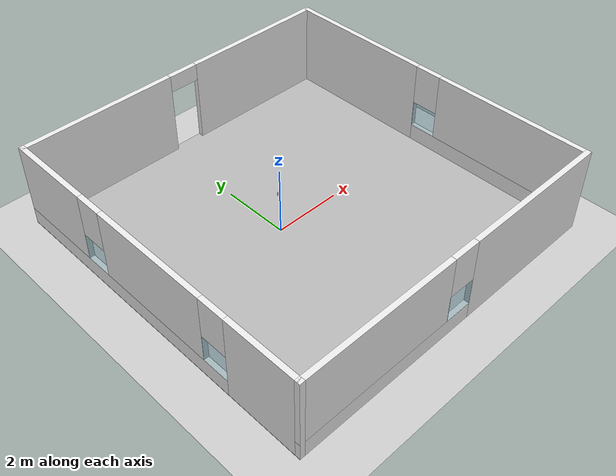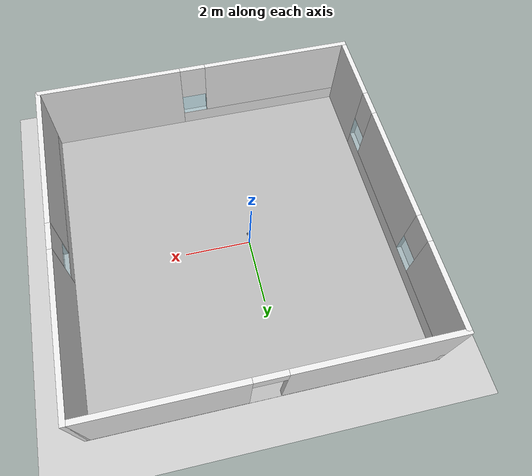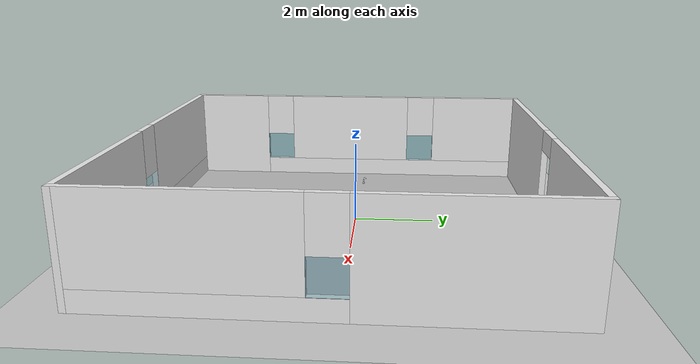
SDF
<sdf version="1.6">
 <world name="default">
  <light name="sun" type="directional">
   <pose>0 0 10 0 -0 0</pose>
   <diffuse>0.8 0.8 0.8 1</diffuse>
   <specular>0.2 0.2 0.2 1</specular>
   <attenuation>
    <range>1000</range>
    <constant>0.9</constant>
    <linear>0.01</linear>
    <quadratic>0.001</quadratic>
   </attenuation>
   <direction>-0.5 0.1 -0.9</direction>
  </light>
  <model name="ground_plane">
   <static>1</static>
   <link name="link">
    <collision name="collision">
     <geometry><plane><normal>0 0 1</normal><size>100 100</size></plane></geometry>
     <surface>
      <contact><collide_bitmask>65535</collide_bitmask></contact>
      <friction><ode><mu>100</mu><mu2>50</mu2></ode></friction>
     </surface>
    </collision>
    <visual name="visual">
     <cast_shadows>0</cast_shadows>
     <geometry><plane><normal>0 0 1</normal><size>100 100</size></plane></geometry>
     <material>
      <script><uri>file://media/materials/scripts/gazebo.material</uri><name>Gazebo/Grey</name></script>
     </material>
    </visual>
   </link>
  </model>
  <gravity>0 0 -9.8</gravity>
  <magnetic_field>6e-06 2.3e-05 -4.2e-05</magnetic_field>
  <atmosphere type="adiabatic"/>
  <physics name="default_physics" default="0" type="ode">
   <max_step_size>0.001</max_step_size>
   <real_time_factor>1</real_time_factor>
   <real_time_update_rate>1000</real_time_update_rate>
  </physics>
  <scene><ambient>0.4 0.4 0.4 1</ambient><background>0.7 0.7 0.7 1</background><shadows>1</shadows></scene>
  <audio><device>default</device></audio>
  <spherical_coordinates>
   <surface_model>EARTH_WGS84</surface_model>
   <latitude_deg>0</latitude_deg>
   <longitude_deg>0</longitude_deg>
   <elevation>0</elevation>
   <heading_deg>0</heading_deg>
  </spherical_coordinates>
  <model name="office_small">
   <model name="office_small">
    <pose>0.626081 -0.27837 0 0 -0 0</pose>
    <link name="Wall_2">
     <pose>0 4.925 0 0 -0 0</pose>
     <visual name="Wall_2_Visual_0">
      <pose>-2.69024 0 1.25 0 -0 0</pose>
      <geometry><box><size>4.61951 0.15 2.5</size></box></geometry>
      <material>
       <script>
        <uri>model://office_small/materials/scripts</uri>
        <uri>model://office_small/materials/textures</uri>
        <name>wall_white</name>
       </script>
      </material>
     </visual>
     <collision name="Wall_2_Collision_0">
      <geometry><box><size>4.61951 0.15 2.5</size></box></geometry>
      <pose>-2.69024 0 1.25 0 -0 0</pose>
     </collision>
     <visual name="Wall_2_Visual_1">
      <pose>2.75976 0 1.25 0 -0 0</pose>
      <geometry><box><size>4.48049 0.15 2.5</size></box></geometry>
      <material>
       <script>
        <uri>model://office_small/materials/scripts</uri>
        <uri>model://office_small/materials/textures</uri>
        <name>wall_white</name>
       </script>
      </material>
     </visual>
     <collision name="Wall_2_Collision_1">
      <geometry><box><size>4.48049 0.15 2.5</size></box></geometry>
      <pose>2.75976 0 1.25 0 -0 0</pose>
     </collision>
     <visual name="Wall_2_Visual_2">
      <pose>0.06951 0 2.25 0 -0 0</pose>
      <geometry><box><size>0.9 0.15 0.5</size></box></geometry>
      <material>
       <script>
        <uri>model://office_small/materials/scripts</uri>
        <uri>model://office_small/materials/textures</uri>
        <name>wall_white</name>
       </script>
      </material>
     </visual>
     <collision name="Wall_2_Collision_2">
      <geometry><box><size>0.9 0.15 0.5</size></box></geometry>
      <pose>0.06951 0 2.25 0 -0 0</pose>
     </collision>
    </link>
    <link name="Wall_3">
     <pose>4.925 0 0 0 0 -1.5708</pose>
     <visual name="Wall_3_Visual_0">
      <pose>-2.74228 0 1.25 0 -0 0</pose>
      <geometry><box><size>4.51544 0.15 2.5</size></box></geometry>
      <material>
       <script>
        <uri>model://office_small/materials/scripts</uri>
        <uri>model://office_small/materials/textures</uri>
        <name>wall_white</name>
       </script>
      </material>
     </visual>
     <collision name="Wall_3_Collision_0">
      <geometry><box><size>4.51544 0.15 2.5</size></box></geometry>
      <pose>-2.74228 0 1.25 0 -0 0</pose>
     </collision>
     <visual name="Wall_3_Visual_1">
      <pose>2.25772 0 0.25 0 -0 0</pose>
      <geometry><box><size>5.48456 0.15 0.5</size></box></geometry>
      <material>
       <script>
        <uri>model://office_small/materials/scripts</uri>
        <uri>model://office_small/materials/textures</uri>
        <name>wall_white</name>
       </script>
      </material>
     </visual>
     <collision name="Wall_3_Collision_1">
      <geometry><box><size>5.48456 0.15 0.5</size></box></geometry>
      <pose>2.25772 0 0.25 0 -0 0</pose>
     </collision>
     <visual name="Wall_3_Visual_2">
      <pose>2.65772 0 1.5 0 -0 0</pose>
      <geometry><box><size>4.68456 0.15 2</size></box></geometry>
      <material>
       <script>
        <uri>model://office_small/materials/scripts</uri>
        <uri>model://office_small/materials/textures</uri>
        <name>wall_white</name>
       </script>
      </material>
     </visual>
     <collision name="Wall_3_Collision_2">
      <geometry><box><size>4.68456 0.15 2</size></box></geometry>
      <pose>2.65772 0 1.5 0 -0 0</pose>
     </collision>
     <visual name="Wall_3_Visual_3">
      <pose>-0.084559 0 1.9 0 -0 0</pose>
      <geometry><box><size>0.8 0.15 1.2</size></box></geometry>
      <material>
       <script>
        <uri>model://office_small/materials/scripts</uri>
        <uri>model://office_small/materials/textures</uri>
        <name>wall_white</name>
       </script>
      </material>
     </visual>
     <collision name="Wall_3_Collision_3">
      <geometry><box><size>0.8 0.15 1.2</size></box></geometry>
      <pose>-0.084559 0 1.9 0 -0 0</pose>
     </collision>
    </link>
    <link name="Wall_4">
     <pose>0 -4.925 0 0 -0 3.14159</pose>
     <visual name="Wall_4_Visual_0">
      <pose>-2.74632 0 1.25 0 -0 0</pose>
      <geometry><box><size>4.50736 0.15 2.5</size></box></geometry>
      <material>
       <script>
        <uri>model://office_small/materials/scripts</uri>
        <uri>model://office_small/materials/textures</uri>
        <name>wall_white</name>
       </script>
      </material>
     </visual>
     <collision name="Wall_4_Collision_0">
      <geometry><box><size>4.50736 0.15 2.5</size></box></geometry>
      <pose>-2.74632 0 1.25 0 -0 0</pose>
     </collision>
     <visual name="Wall_4_Visual_1">
      <pose>2.25368 0 0.25 0 -0 0</pose>
      <geometry><box><size>5.49264 0.15 0.5</size></box></geometry>
      <material>
       <script>
        <uri>model://office_small/materials/scripts</uri>
        <uri>model://office_small/materials/textures</uri>
        <name>wall_white</name>
       </script>
      </material>
     </visual>
     <collision name="Wall_4_Collision_1">
      <geometry><box><size>5.49264 0.15 0.5</size></box></geometry>
      <pose>2.25368 0 0.25 0 -0 0</pose>
     </collision>
     <visual name="Wall_4_Visual_2">
      <pose>2.65368 0 1.5 0 -0 0</pose>
      <geometry><box><size>4.69264 0.15 2</size></box></geometry>
      <material>
       <script>
        <uri>model://office_small/materials/scripts</uri>
        <uri>model://office_small/materials/textures</uri>
        <name>wall_white</name>
       </script>
      </material>
     </visual>
     <collision name="Wall_4_Collision_2">
      <geometry><box><size>4.69264 0.15 2</size></box></geometry>
      <pose>2.65368 0 1.5 0 -0 0</pose>
     </collision>
     <visual name="Wall_4_Visual_3">
      <pose>-0.09264 0 1.9 0 -0 0</pose>
      <geometry><box><size>0.8 0.15 1.2</size></box></geometry>
      <material>
       <script>
        <uri>model://office_small/materials/scripts</uri>
        <uri>model://office_small/materials/textures</uri>
        <name>wall_white</name>
       </script>
      </material>
     </visual>
     <collision name="Wall_4_Collision_3">
      <geometry><box><size>0.8 0.15 1.2</size></box></geometry>
      <pose>-0.09264 0 1.9 0 -0 0</pose>
     </collision>
    </link>
    <link name="Wall_5">
     <pose>-4.925 0 0 0 -0 1.5708</pose>
     <visual name="Wall_5_Visual_0">
      <pose>-3.88364 0 1.25 0 -0 0</pose>
      <geometry><box><size>2.23271 0.15 2.5</size></box></geometry>
      <material>
       <script>
        <uri>model://office_small/materials/scripts</uri>
        <uri>model://office_small/materials/textures</uri>
        <name>wall_white</name>
       </script>
      </material>
     </visual>
     <collision name="Wall_5_Collision_0">
      <geometry><box><size>2.23271 0.15 2.5</size></box></geometry>
      <pose>-3.88364 0 1.25 0 -0 0</pose>
     </collision>
     <visual name="Wall_5_Visual_1">
      <pose>1.11636 0 0.25 0 -0 0</pose>
      <geometry><box><size>7.76729 0.15 0.5</size></box></geometry>
      <material>
       <script>
        <uri>model://office_small/materials/scripts</uri>
        <uri>model://office_small/materials/textures</uri>
        <name>wall_white</name>
       </script>
      </material>
     </visual>
     <collision name="Wall_5_Collision_1">
      <geometry><box><size>7.76729 0.15 0.5</size></box></geometry>
      <pose>1.11636 0 0.25 0 -0 0</pose>
     </collision>
     <visual name="Wall_5_Visual_2">
      <pose>-0.169878 0 1.5 0 -0 0</pose>
      <geometry><box><size>3.59482 0.15 2</size></box></geometry>
      <material>
       <script>
        <uri>model://office_small/materials/scripts</uri>
        <uri>model://office_small/materials/textures</uri>
        <name>wall_white</name>
       </script>
      </material>
     </visual>
     <collision name="Wall_5_Collision_2">
      <geometry><box><size>3.59482 0.15 2</size></box></geometry>
      <pose>-0.169878 0 1.5 0 -0 0</pose>
     </collision>
     <visual name="Wall_5_Visual_3">
      <pose>3.71376 0 1.5 0 -0 0</pose>
      <geometry><box><size>2.57247 0.15 2</size></box></geometry>
      <material>
       <script>
        <uri>model://office_small/materials/scripts</uri>
        <uri>model://office_small/materials/textures</uri>
        <name>wall_white</name>
       </script>
      </material>
     </visual>
     <collision name="Wall_5_Collision_3">
      <geometry><box><size>2.57247 0.15 2</size></box></geometry>
      <pose>3.71376 0 1.5 0 -0 0</pose>
     </collision>
     <visual name="Wall_5_Visual_4">
      <pose>-2.36729 0 1.9 0 -0 0</pose>
      <geometry><box><size>0.8 0.15 1.2</size></box></geometry>
      <material>
       <script>
        <uri>model://office_small/materials/scripts</uri>
        <uri>model://office_small/materials/textures</uri>
        <name>wall_white</name>
       </script>
      </material>
     </visual>
     <collision name="Wall_5_Collision_4">
      <geometry><box><size>0.8 0.15 1.2</size></box></geometry>
      <pose>-2.36729 0 1.9 0 -0 0</pose>
     </collision>
     <visual name="Wall_5_Visual_5">
      <pose>2.02753 0 1.9 0 -0 0</pose>
      <geometry><box><size>0.8 0.15 1.2</size></box></geometry>
      <material>
       <script>
        <uri>model://office_small/materials/scripts</uri>
        <uri>model://office_small/materials/textures</uri>
        <name>wall_white</name>
       </script>
      </material>
     </visual>
     <collision name="Wall_5_Collision_5">
      <geometry><box><size>0.8 0.15 1.2</size></box></geometry>
      <pose>2.02753 0 1.9 0 -0 0</pose>
     </collision>
    </link>
    <static>1</static>
    <pose>-0.170582 -0.321472 0 0 -0 0</pose>
   </model>
   <model name="window">
    <link name="link_2">
     <visual name="visual">
      <pose>0 0 0.9 0 -0 0</pose>
      <geometry><box><size>0.8 0.15 0.8</size></box></geometry>
      <material>
       <lighting>1</lighting>
       <ambient>0.1 0.5 0.6 1</ambient>
       <diffuse>0.1 0.5 0.6 1</diffuse>
       <specular>0.01 0.01 0.01 1</specular>
       <emissive>0 0 0 1</emissive>
      </material>
      <transparency>0.7</transparency>
     </visual>
     <collision name="collision">
      <pose>0 0 0.9 0 -0 0</pose>
      <geometry><box><size>0.8 0.15 0.8</size></box></geometry>
     </collision>
    </link>
    <static>1</static>
    <pose>-4.29709 1.75005 -0 0 -0 1.5706</pose>
   </model>
   <model name="window_0">
    <link name="link_2">
     <visual name="visual">
      <pose>0 0 0.9 0 -0 0</pose>
      <geometry><box><size>0.8 0.15 0.8</size></box></geometry>
      <material>
       <lighting>1</lighting>
       <ambient>0.1 0.5 0.6 1</ambient>
       <diffuse>0.1 0.5 0.6 1</diffuse>
       <specular>0.01 0.01 0.01 1</specular>
       <emissive>0 0 0 1</emissive>
      </material>
      <transparency>0.7</transparency>
     </visual>
     <collision name="collision">
      <pose>0 0 0.9 0 -0 0</pose>
      <geometry><box><size>0.8 0.15 0.8</size></box></geometry>
     </collision>
    </link>
    <static>1</static>
    <pose>-4.29785 -2.65001 -0 0 -0 1.57</pose>
   </model>
   <model name="window_1">
    <link name="link_2">
     <visual name="visual">
      <pose>0 0 0.9 0 -0 0</pose>
      <geometry><box><size>0.8 0.15 0.8</size></box></geometry>
      <material>
       <lighting>1</lighting>
       <ambient>0.1 0.5 0.6 1</ambient>
       <diffuse>0.1 0.5 0.6 1</diffuse>
       <specular>0.01 0.01 0.01 1</specular>
       <emissive>0 0 0 1</emissive>
      </material>
      <transparency>0.7</transparency>
     </visual>
     <collision name="collision">
      <pose>0 0 0.9 0 -0 0</pose>
      <geometry><box><size>0.8 0.15 0.8</size></box></geometry>
     </collision>
    </link>
    <static>1</static>
    <pose>0.704471 -5.20489 -0 0 -0 0</pose>
   </model>
   <model name="window_2">
    <link name="link_2">
     <visual name="visual">
      <pose>0 0 0.9 0 -0 0</pose>
      <geometry><box><size>0.8 0.15 0.8</size></box></geometry>
      <material>
       <lighting>1</lighting>
       <ambient>0.1 0.5 0.6 1</ambient>
       <diffuse>0.1 0.5 0.6 1</diffuse>
       <specular>0.01 0.01 0.01 1</specular>
       <emissive>0 0 0 1</emissive>
      </material>
      <transparency>0.7</transparency>
     </visual>
     <collision name="collision">
      <pose>0 0 0.9 0 -0 0</pose>
      <geometry><box><size>0.8 0.15 0.8</size></box></geometry>
     </collision>
    </link>
    <static>1</static>
    <pose>5.56533 -0.194494 -0 0 -0 1.57</pose>
   </model>
   <model name="Floor">
    <link name="main">
     <pose>0.795 0.05 0.01 0 -0 0</pose>
     <collision name="main_Collision"><geometry><box><size>10 10 0.01</size></box></geometry></collision>
     <visual name="main_Visual">
      <geometry><box><size>10 10 0.01</size></box></geometry>
      <material>
       <script>
        <uri>model://office_small/materials/scripts</uri>
        <uri>model://office_small/materials/textures</uri>
        <name>floor</name>
       </script>
      </material>
     </visual>
    </link>
    <static>1</static>
    <pose>-0.170579 -0.321472 -0 0 -0 0</pose>
   </model>
   <static>0</static>
   <pose>-0.017614 0.016112 0 0 -0 0</pose>
  </model>
  <light name="user_directional_light_0" type="directional">
   <pose>7.29117 -0.110751 1 0 -0 0</pose>
   <diffuse>0.5 0.5 0.5 1</diffuse>
   <specular>0.1 0.1 0.1 1</specular>
   <direction>0.1 0.1 -0.9</direction>
   <attenuation>
    <range>20</range>
    <constant>0.5</constant>
    <linear>0.01</linear>
    <quadratic>0.001</quadratic>
   </attenuation>
  </light>
  <model name="probe">
   <link name="link_0">
    <inertial>
     <mass>1</mass>
     <inertia>
      <ixx>0.166667</ixx>
      <ixy>0</ixy>
      <ixz>0</ixz>
      <iyy>0.166667</iyy>
      <iyz>0</iyz>
      <izz>0.166667</izz>
     </inertia>
    </inertial>
    <visual name="visual">
     <geometry>
      <mesh><uri>model://probe/meshes/Ultrasonic-Probe.stl</uri><scale>0.0007 0.0007 0.0007</scale></mesh>
     </geometry>
     <material>
      <lighting>1</lighting>
      <script>
       <uri>model://probe/materials/scripts</uri>
       <uri>model://probe/materials/textures</uri>
       <name>mat2</name>
      </script>
     </material>
    </visual>
    <collision name="collision">
     <geometry>
      <mesh><uri>model://probe/meshes/Ultrasonic-Probe.stl</uri><scale>0.0007 0.0007 0.0007</scale></mesh>
     </geometry>
     <surface>
      <friction>
       <ode><mu>1</mu><mu2>1</mu2><fdir1>0 0 0</fdir1><slip1>0</slip1><slip2>0</slip2></ode>
       <torsional>
        <coefficient>1</coefficient>
        <patch_radius>0</patch_radius>
        <surface_radius>0</surface_radius>
        <use_patch_radius>1</use_patch_radius>
        <ode><slip>0</slip></ode>
       </torsional>
      </friction>
      <bounce><restitution_coefficient>0</restitution_coefficient><threshold>1e+06</threshold></bounce>
      <contact>
       <collide_without_contact>0</collide_without_contact>
       <collide_without_contact_bitmask>1</collide_without_contact_bitmask>
       <collide_bitmask>1</collide_bitmask>
       <ode>
        <soft_cfm>0</soft_cfm>
        <soft_erp>0.2</soft_erp>
        <kp>1e+13</kp>
        <kd>1</kd>
        <max_vel>0.01</max_vel>
        <min_depth>0</min_depth>
       </ode>
       <bullet>
        <split_impulse>1</split_impulse>
        <split_impulse_penetration_threshold>-0.01</split_impulse_penetration_threshold>
        <soft_cfm>0</soft_cfm>
        <soft_erp>0.2</soft_erp>
        <kp>1e+13</kp>
        <kd>1</kd>
       </bullet>
      </contact>
     </surface>
    </collision>
   </link>
   <static>1</static>
   <pose>0.116161 0.184447 1.01093 1.57089 -0.002766 1.53752</pose>
  </model>
 </world>
</sdf>
